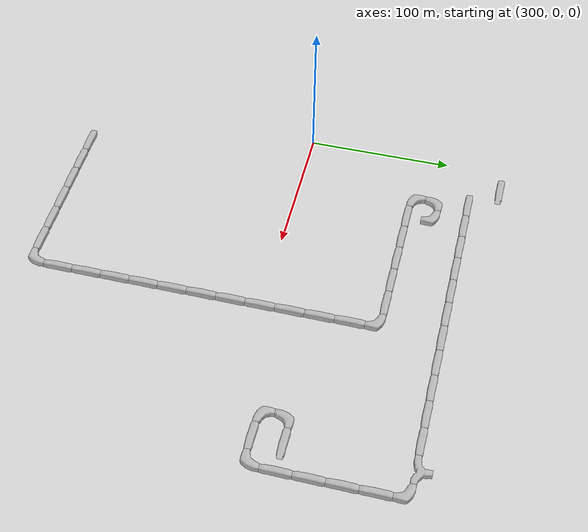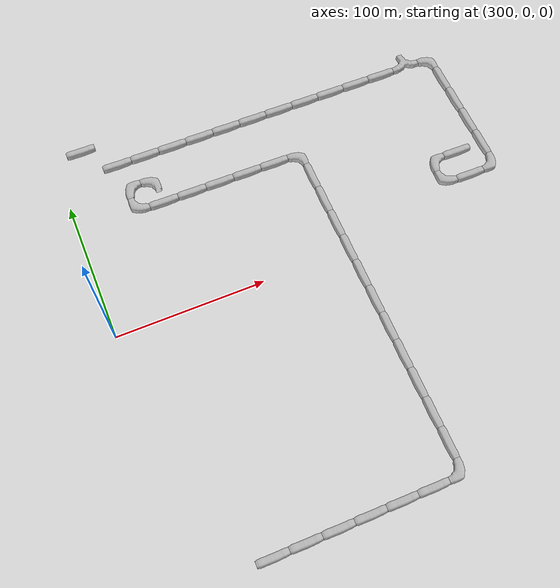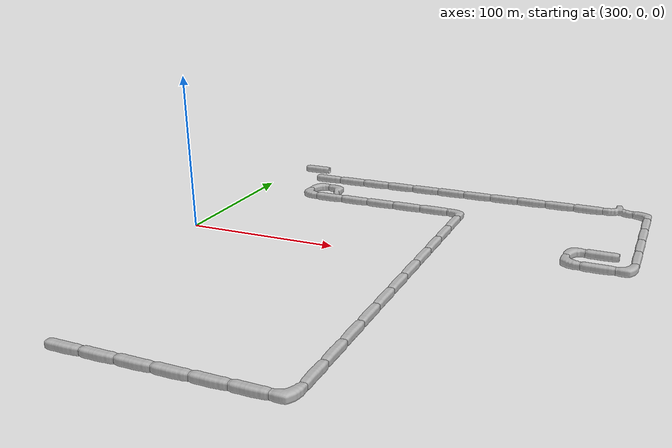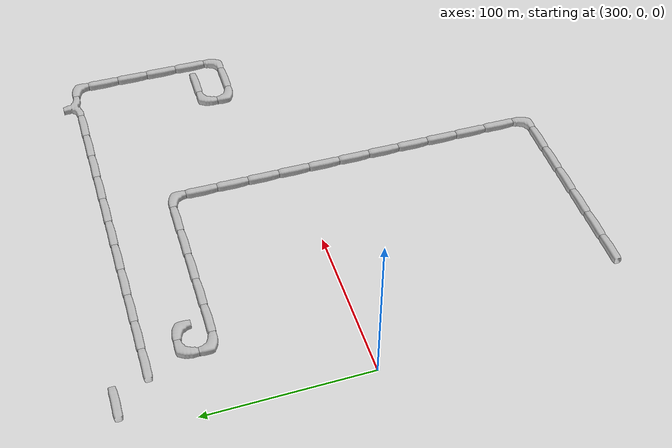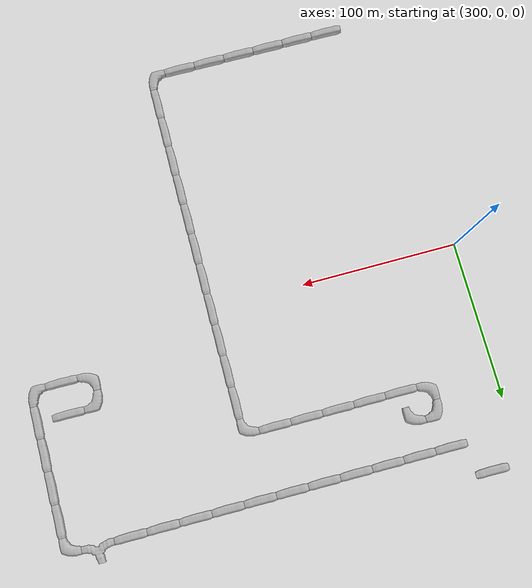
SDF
<sdf version="1.6">
 <world name="cave_16000_2">
  <include>
   <static>true</static>
   <name>cave_17_-8</name>
   <pose>340 -160 0 0 0 1.5707963267948966</pose>
   <uri>model://cave_straight_20m</uri>
  </include>
  <include>
   <static>true</static>
   <name>cave_18_-8</name>
   <pose>360 -160 0 0 0 1.5707963267948966</pose>
   <uri>model://cave_straight_20m</uri>
  </include>
  <include>
   <static>true</static>
   <name>cave_19_-8</name>
   <pose>380 -160 0 0 0 1.5707963267948966</pose>
   <uri>model://cave_straight_20m</uri>
  </include>
  <include>
   <static>true</static>
   <name>cave_20_-8</name>
   <pose>400 -160 0 0 0 1.5707963267948966</pose>
   <uri>model://cave_straight_20m</uri>
  </include>
  <include>
   <static>true</static>
   <name>cave_21_-8</name>
   <pose>420 -160 0 0 0 1.5707963267948966</pose>
   <uri>model://cave_straight_20m</uri>
  </include>
  <include>
   <static>true</static>
   <name>cave_22_-8</name>
   <pose>440 -160 0 0 0 1.5707963267948966</pose>
   <uri>model://cave_straight_20m</uri>
  </include>
  <include>
   <static>true</static>
   <name>cave_23_-8</name>
   <pose>460 -160 0 0 0 1.5707963267948966</pose>
   <uri>model://cave_L_20m</uri>
  </include>
  <include>
   <static>true</static>
   <name>cave_23_-7</name>
   <pose>460 -140 0 0 0 0.0</pose>
   <uri>model://cave_straight_20m</uri>
  </include>
  <include>
   <static>true</static>
   <name>cave_23_-6</name>
   <pose>460 -120 0 0 0 0.0</pose>
   <uri>model://cave_straight_20m</uri>
  </include>
  <include>
   <static>true</static>
   <name>cave_23_-5</name>
   <pose>460 -100 0 0 0 0.0</pose>
   <uri>model://cave_straight_20m</uri>
  </include>
  <include>
   <static>true</static>
   <name>cave_23_-4</name>
   <pose>460 -80 0 0 0 0.0</pose>
   <uri>model://cave_straight_20m</uri>
  </include>
  <include>
   <static>true</static>
   <name>cave_23_-3</name>
   <pose>460 -60 0 0 0 0.0</pose>
   <uri>model://cave_straight_20m</uri>
  </include>
  <include>
   <static>true</static>
   <name>cave_23_-2</name>
   <pose>460 -40 0 0 0 0.0</pose>
   <uri>model://cave_straight_20m</uri>
  </include>
  <include>
   <static>true</static>
   <name>cave_23_-1</name>
   <pose>460 -20 0 0 0 0.0</pose>
   <uri>model://cave_straight_20m</uri>
  </include>
  <include>
   <static>true</static>
   <name>cave_23_0</name>
   <pose>460 0 0 0 0 0.0</pose>
   <uri>model://cave_straight_20m</uri>
  </include>
  <include>
   <static>true</static>
   <name>cave_23_1</name>
   <pose>460 20 0 0 0 0.0</pose>
   <uri>model://cave_straight_20m</uri>
  </include>
  <include>
   <static>true</static>
   <name>cave_23_2</name>
   <pose>460 40 0 0 0 0.0</pose>
   <uri>model://cave_straight_20m</uri>
  </include>
  <include>
   <static>true</static>
   <name>cave_23_3</name>
   <pose>460 60 0 0 0 0.0</pose>
   <uri>model://cave_straight_20m</uri>
  </include>
  <include>
   <static>true</static>
   <name>cave_23_4</name>
   <pose>460 80 0 0 0 3.141592653589793</pose>
   <uri>model://cave_L_20m</uri>
  </include>
  <include>
   <static>true</static>
   <name>cave_22_4</name>
   <pose>440 80 0 0 0 1.5707963267948966</pose>
   <uri>model://cave_straight_20m</uri>
  </include>
  <include>
   <static>true</static>
   <name>cave_21_4</name>
   <pose>420 80 0 0 0 1.5707963267948966</pose>
   <uri>model://cave_straight_20m</uri>
  </include>
  <include>
   <static>true</static>
   <name>cave_20_4</name>
   <pose>400 80 0 0 0 1.5707963267948966</pose>
   <uri>model://cave_straight_20m</uri>
  </include>
  <include>
   <static>true</static>
   <name>cave_19_4</name>
   <pose>380 80 0 0 0 1.5707963267948966</pose>
   <uri>model://cave_straight_20m</uri>
  </include>
  <include>
   <static>true</static>
   <name>cave_18_4</name>
   <pose>360 80 0 0 0 1.5707963267948966</pose>
   <uri>model://cave_straight_20m</uri>
  </include>
  <include>
   <static>true</static>
   <name>cave_17_4</name>
   <pose>340 80 0 0 0 0.0</pose>
   <uri>model://cave_L_20m</uri>
  </include>
  <include>
   <static>true</static>
   <name>cave_17_5</name>
   <pose>340 100 0 0 0 -1.5707963267948966</pose>
   <uri>model://cave_L_20m</uri>
  </include>
  <include>
   <static>true</static>
   <name>cave_18_5</name>
   <pose>360 100 0 0 0 3.141592653589793</pose>
   <uri>model://cave_L_20m</uri>
  </include>
  <include>
   <static>true</static>
   <name>cave_17_6</name>
   <pose>340 120 0 0 0 1.5707963267948966</pose>
   <uri>model://cave_straight_20m</uri>
  </include>
  <include>
   <static>true</static>
   <name>cave_18_6</name>
   <pose>360 120 0 0 0 1.5707963267948966</pose>
   <uri>model://cave_straight_20m</uri>
  </include>
  <include>
   <static>true</static>
   <name>cave_19_6</name>
   <pose>380 120 0 0 0 1.5707963267948966</pose>
   <uri>model://cave_straight_20m</uri>
  </include>
  <include>
   <static>true</static>
   <name>cave_20_6</name>
   <pose>400 120 0 0 0 1.5707963267948966</pose>
   <uri>model://cave_straight_20m</uri>
  </include>
  <include>
   <static>true</static>
   <name>cave_21_6</name>
   <pose>420 120 0 0 0 1.5707963267948966</pose>
   <uri>model://cave_straight_20m</uri>
  </include>
  <include>
   <static>true</static>
   <name>cave_22_6</name>
   <pose>440 120 0 0 0 1.5707963267948966</pose>
   <uri>model://cave_straight_20m</uri>
  </include>
  <include>
   <static>true</static>
   <name>cave_23_6</name>
   <pose>460 120 0 0 0 1.5707963267948966</pose>
   <uri>model://cave_straight_20m</uri>
  </include>
  <include>
   <static>true</static>
   <name>cave_24_6</name>
   <pose>480 120 0 0 0 1.5707963267948966</pose>
   <uri>model://cave_straight_20m</uri>
  </include>
  <include>
   <static>true</static>
   <name>cave_25_6</name>
   <pose>500 120 0 0 0 1.5707963267948966</pose>
   <uri>model://cave_straight_20m</uri>
  </include>
  <include>
   <static>true</static>
   <name>cave_26_6</name>
   <pose>520 120 0 0 0 1.5707963267948966</pose>
   <uri>model://cave_straight_20m</uri>
  </include>
  <include>
   <static>true</static>
   <name>cave_27_6</name>
   <pose>540 120 0 0 0 1.5707963267948966</pose>
   <uri>model://cave_straight_20m</uri>
  </include>
  <include>
   <static>true</static>
   <name>cave_28_6</name>
   <pose>560 120 0 0 0 0.0</pose>
   <uri>model://cave_3way_20m</uri>
  </include>
  <include>
   <static>true</static>
   <name>cave_29_6</name>
   <pose>580 120 0 0 0 3.141592653589793</pose>
   <uri>model://cave_L_20m</uri>
  </include>
  <include>
   <static>true</static>
   <name>cave_29_5</name>
   <pose>580 100 0 0 0 0.0</pose>
   <uri>model://cave_straight_20m</uri>
  </include>
  <include>
   <static>true</static>
   <name>cave_29_4</name>
   <pose>580 80 0 0 0 0.0</pose>
   <uri>model://cave_straight_20m</uri>
  </include>
  <include>
   <static>true</static>
   <name>cave_29_3</name>
   <pose>580 60 0 0 0 0.0</pose>
   <uri>model://cave_straight_20m</uri>
  </include>
  <include>
   <static>true</static>
   <name>cave_29_2</name>
   <pose>580 40 0 0 0 0.0</pose>
   <uri>model://cave_straight_20m</uri>
  </include>
  <include>
   <static>true</static>
   <name>cave_29_1</name>
   <pose>580 20 0 0 0 1.5707963267948966</pose>
   <uri>model://cave_L_20m</uri>
  </include>
  <include>
   <static>true</static>
   <name>cave_28_1</name>
   <pose>560 20 0 0 0 1.5707963267948966</pose>
   <uri>model://cave_straight_20m</uri>
  </include>
  <include>
   <static>true</static>
   <name>cave_27_1</name>
   <pose>540 20 0 0 0 0.0</pose>
   <uri>model://cave_L_20m</uri>
  </include>
  <include>
   <static>true</static>
   <name>cave_27_2</name>
   <pose>540 40 0 0 0 -1.5707963267948966</pose>
   <uri>model://cave_L_20m</uri>
  </include>
  <include>
   <static>true</static>
   <name>cave_28_2</name>
   <pose>560 40 0 0 0 1.5707963267948966</pose>
   <uri>model://cave_straight_20m</uri>
  </include>
  <include>
   <static>true</static>
   <name>cave_16_7</name>
   <pose>320 140 0 0 0 1.5707963267948966</pose>
   <uri>model://cave_straight_20m</uri>
  </include>
 </world>
</sdf>
